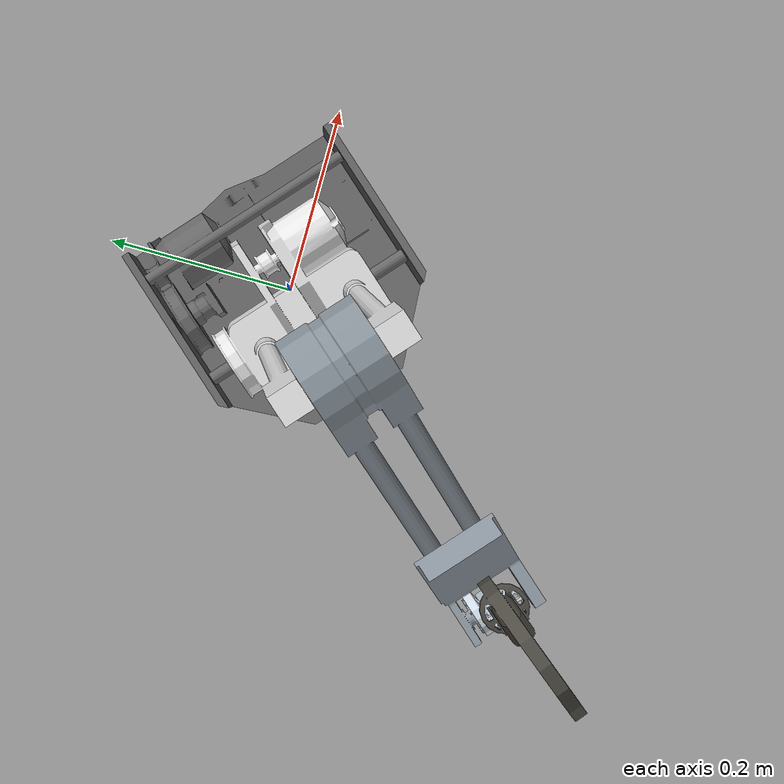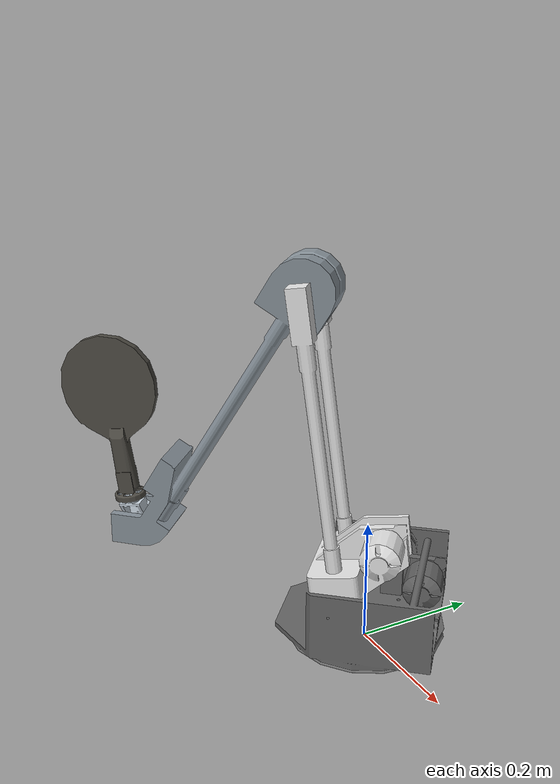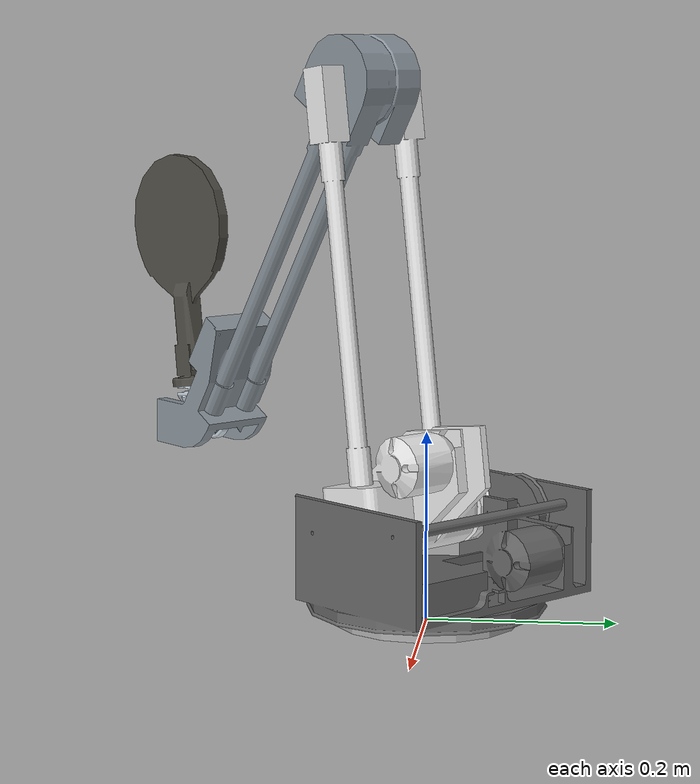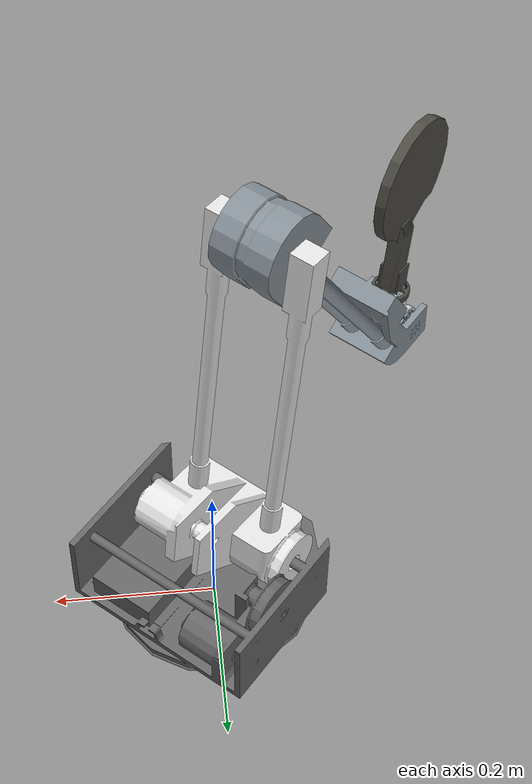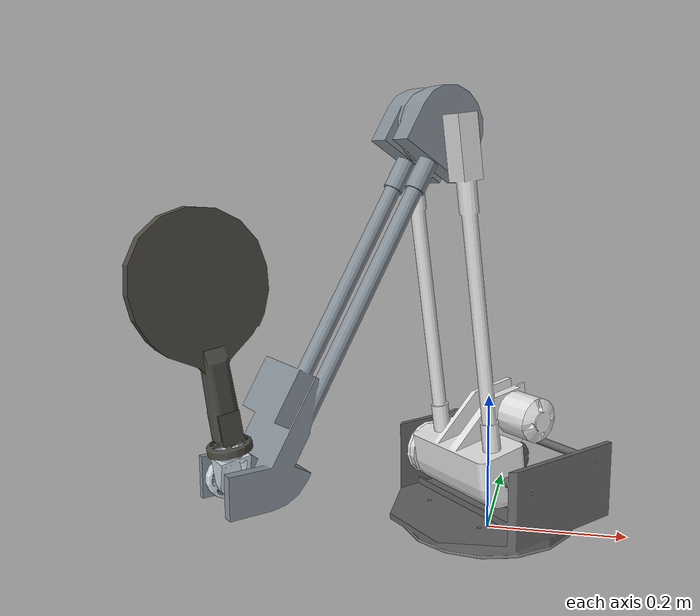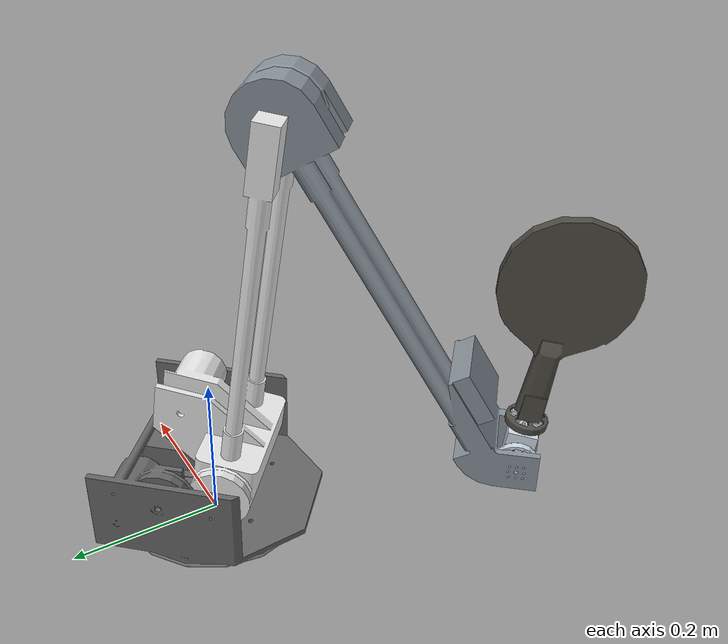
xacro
<?xml version="1.0"?>
<robot xmlns:xacro="http://www.ros.org/wiki/xacro" name="mainarmass">
    <xacro:arg name="initial_positions_file" default="initial_positions.yaml" />

    <!-- Import mainarmass urdf file -->
    <xacro:include filename="$(find ttt_control)/urdf/mainarmass_fixed.urdf" />

    <!-- Import control_xacro -->
    <xacro:include filename="mainarmass.ros2_control.xacro" />

    <xacro:mainarmass_ros2_control name="FakeSystem" initial_positions_file="$(arg initial_positions_file)"/>

</robot>

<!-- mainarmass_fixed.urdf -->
<robot name="mainarmass">
    <material name="gray"><color rgba="0.647 0.647 0.647 1" /></material>
    <material name="black"><color rgba="0.529 0.568 0.6 1" /></material>
    <material name="red"><color rgba="0.301 0.290 0.262 1" /></material>
    <material name="dark_gray"><color rgba="0.4 0.4 0.4 1" /></material>
    <material name="white"><color rgba="0.901 0.901 0.901 1" /></material>
    <material name="light_blue"><color rgba="0.811 0.858 0.898 1" /></material>

    <link name="root" />

    <link name="Base">
        <inertial>
            <mass value="0.219" />
            <origin xyz="0 0 0.005" rpy="0 0 0" />
            <inertia ixx="0.0009559" ixy="0" ixz="0" iyy="0.0009559" iyz="0" izz="0.00190814" />
        </inertial>
        <visual>
            <origin xyz="0 0 0" rpy="0 0 0" />
            <geometry><mesh filename="package://mainarmass/meshes/67.stl" scale="1 1 1" /></geometry>
            <material name="gray" />
        </visual>
        <collision>
            <origin xyz="0 0 0" rpy="0 0 0" />
            <geometry><mesh filename="package://mainarmass/meshes/67.stl" scale="1 1 1" /></geometry>
        </collision>
    </link>

    <link name="Shoulder">
        <inertial>
            <mass value="3.232" />
            <origin xyz="0.0015 0.0238 0.0500" rpy="0 0 0" />
            <inertia ixx="0.01827653" ixy="0.00349413" ixz="-0.00033063" iyy="0.01968154" iyz="-0.00175414" izz="0.03042546" />
        </inertial>
        <visual>
            <origin xyz="0.0637 0.1917 0.0902" rpy="0 0 0" />
            <geometry><mesh filename="package://mainarmass/meshes/63.stl" scale="1 1 1" /></geometry>
            <material name="dark_gray" />
        </visual>
        <collision>
            <origin xyz="0.0637 0.1917 0.0902" rpy="0 0 0" />
            <geometry><mesh filename="package://mainarmass/meshes/63.stl" scale="1 1 1" /></geometry>
        </collision>
    </link>

    <link name="UpperArm">
        <inertial>
            <mass value="1.456" />
            <origin xyz="0.0016 0.0003 0.0734" rpy="0 0 0" />
            <inertia ixx="0.02606584" ixy="-0.00147774" ixz="0.00295468" iyy="0.02661382" iyz="0.00583087" izz="0.00673394" />
        </inertial>
        <visual>
            <origin xyz="-0.0453 0.1279 0.0401" rpy="0 0 0" />
            <geometry><mesh filename="package://mainarmass/meshes/75.stl" scale="1 1 1" /></geometry>
            <material name="white" />
        </visual>
        <collision>
            <origin xyz="-0.0453 0.1279 0.0401" rpy="0 0 0" />
            <geometry><mesh filename="package://mainarmass/meshes/75.stl" scale="1 1 1" /></geometry>
        </collision>
    </link>

    <link name="Forearm">
        <inertial>
            <mass value="29.5338" />
            <origin xyz="-0.0255 -0.0694 -0.1516" rpy="0 0 0" />
            <inertia ixx="1.1872" ixy="-0.0724" ixz="-0.1595" iyy="1.0148" iyz="-0.4378" izz="0.2615" />
        </inertial>
        <visual>
            <origin xyz="0.0640 0.2460 -0.3971" rpy="0 0 0" />
            <geometry><mesh filename="package://mainarmass/meshes/79.stl" scale="1 1 1" /></geometry>
            <material name="black" />
        </visual>
        <collision>
            <origin xyz="0.0640 0.2460 -0.3971" rpy="0 0 0" />
            <geometry><mesh filename="package://mainarmass/meshes/79.stl" scale="1 1 1" /></geometry>
        </collision>
    </link>

    <link name="Wrist">
        <inertial>
            <mass value="0.086" />
            <origin xyz="-0.0285 0.0006 0.0133" rpy="0 0 0" />
            <inertia ixx="0.00004728" ixy="-0.00001086" ixz="0.00002008" iyy="0.00005686" iyz="0.00000813" izz="0.00003823" />
        </inertial>
        <visual>
            <origin xyz="0.1232 0.3795 0.0397" rpy="0 0 0" />
            <geometry><mesh filename="package://mainarmass/meshes/59.stl" scale="1 1 1" /></geometry>
            <material name="light_blue" />
        </visual>
        <collision>
            <origin xyz="0.1232 0.3795 0.0397" rpy="0 0 0" />
            <geometry><mesh filename="package://mainarmass/meshes/59.stl" scale="1 1 1" /></geometry>
        </collision>
    </link>

    <link name="Paddle">
        <inertial>
            <mass value="0.355" />
            <origin xyz="-0.0346 -0.0910 0.1368" rpy="0 0 0" />
            <inertia ixx="0.00254292" ixy="-0.0003235" ixz="0.00032513" iyy="0.00177002" iyz="0.00082579" izz="0.00103777" />
        </inertial>
        <visual>
            <origin xyz="0.1494 0.3836 -0.0516" rpy="0 0 0" />
            <geometry><mesh filename="package://mainarmass/meshes/71.stl" scale="1 1 1" /></geometry>
            <material name="red" />
        </visual>
        <collision>
            <origin xyz="0.1494 0.3836 -0.0516" rpy="0 0 0" />
            <geometry><mesh filename="package://mainarmass/meshes/71.stl" scale="1 1 1" /></geometry>
        </collision>
    </link>

    <joint name="root_to_base" type="fixed">
        <origin xyz="0 0 0" rpy="0 0 0" />
        <parent link="root" />
        <child link="Base" />
    </joint>

    <joint name="BaseRotate_0" type="continuous">
        <origin xyz="0 0 0" rpy="0.01712 0.04808 -0.38348" />
        <axis xyz="0.04806 -0.01710 -0.99869" />
        <parent link="Base" />
        <child link="Shoulder" />
        <limit effort="10.0" velocity="3.14" />
    </joint>

    <joint name="UpperArmRotate_0" type="continuous">
        <origin xyz="-0.01750 -0.03317 0.10511" rpy="-0.08249 -0.02327 0.02051" />
        <axis xyz="0.93476 -0.35525 0" />
        <parent link="Shoulder" />
        <child link="UpperArm" />
        <limit effort="10.0" velocity="3.14" />
    </joint>

    <joint name="ForeArmRotate_0" type="continuous">
        <origin xyz="-0.03355 -0.08830 0.45530" rpy="-0.06873 0.02609 -0.00089" />
        <axis xyz="0.93476 -0.35525 0" />
        <parent link="UpperArm" />
        <child link="Forearm" />
        <limit effort="10.0" velocity="3.14" />
    </joint>

    <joint name="WristRotate_0" type="continuous">
        <origin xyz="-0.10957 -0.19888 -0.43388" rpy="-0.84990 0.27810 3.0151" />
        <axis xyz="0.93476 -0.35525 0" />
        <parent link="Forearm" />
        <child link="Wrist" />
        <limit effort="10.0" velocity="3.14" />
    </joint>

    <joint name="PaddleRotate_0" type="continuous">
        <origin xyz="-0.04174 -0.00429 0.02647" rpy="0 0 0" />
        <axis xyz="0.20602 0.54209 -0.81467" />
        <parent link="Wrist" />
        <child link="Paddle" />
        <limit effort="10.0" velocity="3.14" />
    </joint>
</robot>
